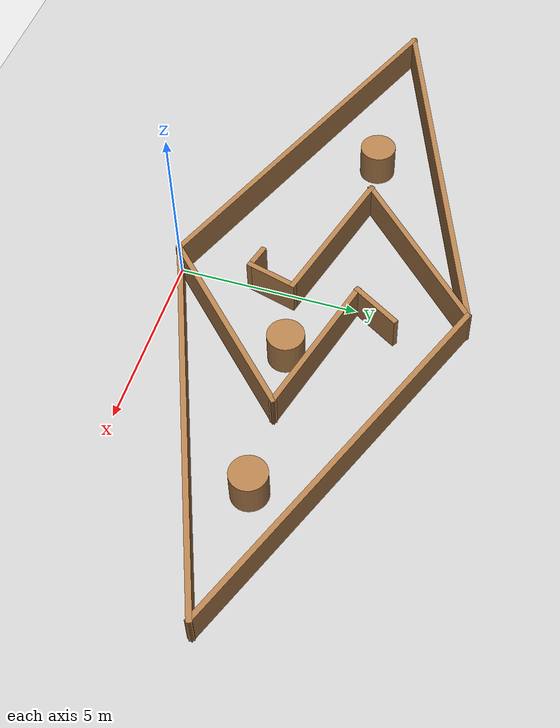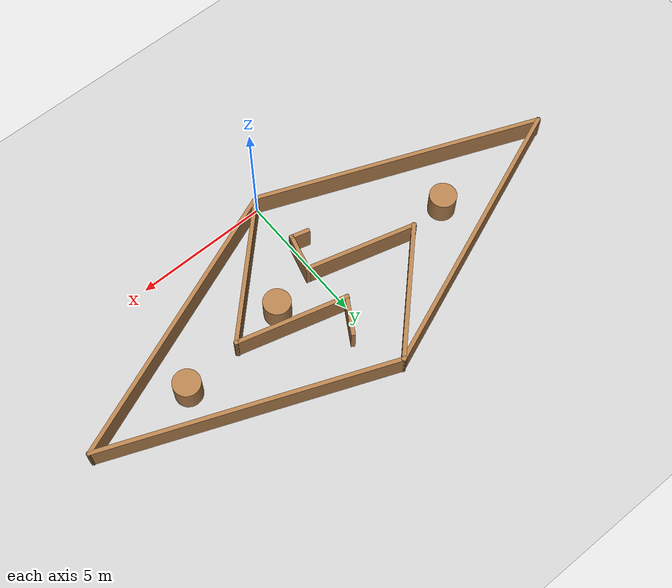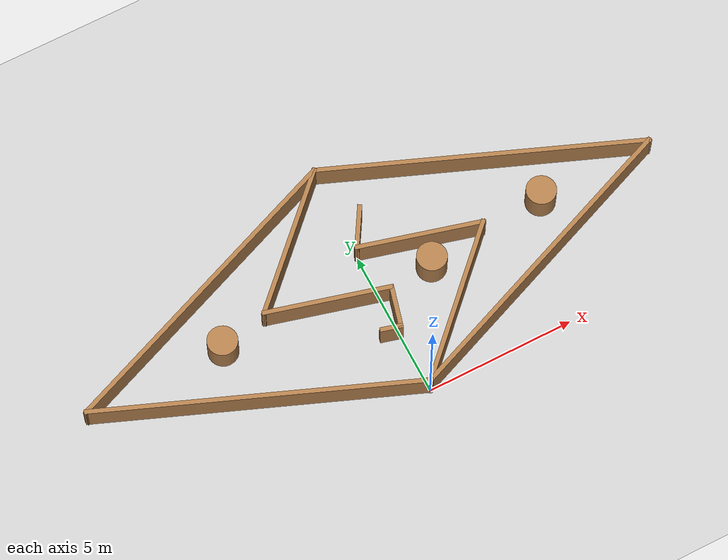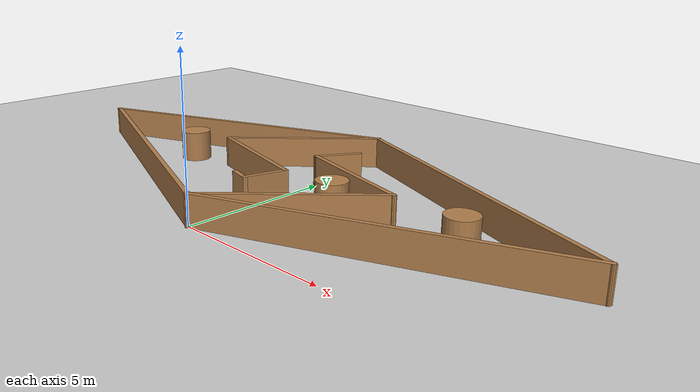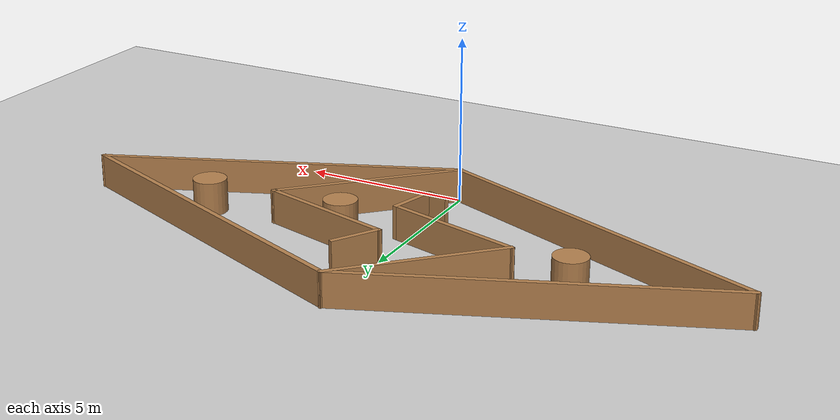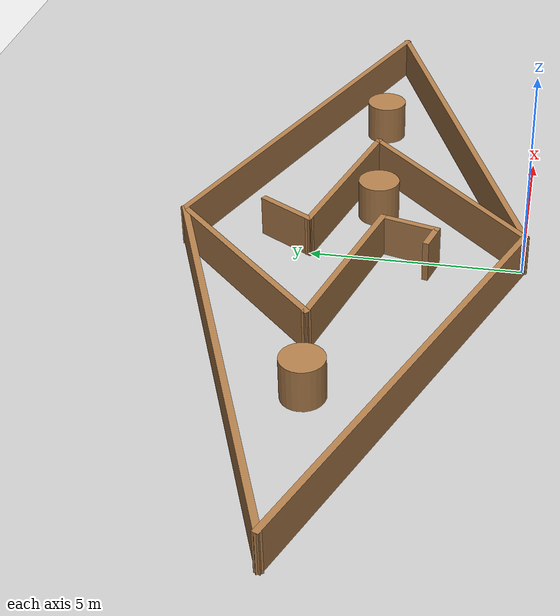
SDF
<sdf version='1.7'>
  <world name='default'>
    <light name='sun' type='directional'>
      <cast_shadows>1</cast_shadows>
      <pose>0 0 10 0 -0 0</pose>
      <diffuse>0.8 0.8 0.8 1</diffuse>
      <specular>0.2 0.2 0.2 1</specular>
      <attenuation>
        <range>1000</range>
        <constant>0.9</constant>
        <linear>0.01</linear>
        <quadratic>0.001</quadratic>
      </attenuation>
      <direction>-0.5 0.1 -0.9</direction>
      <spot>
        <inner_angle>0</inner_angle>
        <outer_angle>0</outer_angle>
        <falloff>0</falloff>
      </spot>
    </light>
    <model name='ground_plane'>
      <static>1</static>
      <link name='link'>
        <collision name='collision'>
          <geometry>
            <plane>
              <normal>0 0 1</normal>
              <size>100 100</size>
            </plane>
          </geometry>
          <surface>
            <contact>
              <collide_bitmask>65535</collide_bitmask>
              <ode/>
            </contact>
            <friction>
              <ode>
                <mu>100</mu>
                <mu2>50</mu2>
              </ode>
              <torsional>
                <ode/>
              </torsional>
            </friction>
            <bounce/>
          </surface>
          <max_contacts>10</max_contacts>
        </collision>
        <visual name='visual'>
          <cast_shadows>0</cast_shadows>
          <geometry>
            <plane>
              <normal>0 0 1</normal>
              <size>100 100</size>
            </plane>
          </geometry>
          <material>
            <script>
              <uri>file://media/materials/scripts/gazebo.material</uri>
              <name>Gazebo/Grey</name>
            </script>
          </material>
        </visual>
        <self_collide>0</self_collide>
        <enable_wind>0</enable_wind>
        <kinematic>0</kinematic>
      </link>
    </model>
    <gravity>0 0 -9.8</gravity>
    <magnetic_field>6e-06 2.3e-05 -4.2e-05</magnetic_field>
    <atmosphere type='adiabatic'/>
    <physics type='ode'>
      <max_step_size>0.001</max_step_size>
      <real_time_factor>1</real_time_factor>
      <real_time_update_rate>1000</real_time_update_rate>
    </physics>
    <scene>
      <ambient>0.4 0.4 0.4 1</ambient>
      <background>0.7 0.7 0.7 1</background>
      <shadows>1</shadows>
    </scene>
    <wind/>
    <spherical_coordinates>
      <surface_model>EARTH_WGS84</surface_model>
      <latitude_deg>0</latitude_deg>
      <longitude_deg>0</longitude_deg>
      <elevation>0</elevation>
      <heading_deg>0</heading_deg>
    </spherical_coordinates>
    <model name='aro_medium_2'>
      <pose>0 4 0 0 -0 0</pose>
      <link name='Wall_0'>
        <collision name='Wall_0_Collision'>
          <geometry>
            <box>
              <size>10.9203 0.15 1</size>
            </box>
          </geometry>
          <pose>0 0 0.5 0 -0 0</pose>
          <max_contacts>10</max_contacts>
          <surface>
            <contact>
              <ode/>
            </contact>
            <bounce/>
            <friction>
              <torsional>
                <ode/>
              </torsional>
              <ode/>
            </friction>
          </surface>
        </collision>
        <visual name='Wall_0_Visual'>
          <pose>0 0 0.5 0 -0 0</pose>
          <geometry>
            <box>
              <size>10.9203 0.15 1</size>
            </box>
          </geometry>
          <material>
            <script>
              <uri>file://media/materials/scripts/gazebo.material</uri>
              <name>Gazebo/Wood</name>
            </script>
            <ambient>1 1 1 1</ambient>
          </material>
          <meta>
            <layer>0</layer>
          </meta>
        </visual>
        <pose>-5 -2 0 0 -0 -0.380506</pose>
        <self_collide>0</self_collide>
        <enable_wind>0</enable_wind>
        <kinematic>0</kinematic>
      </link>
      <link name='Wall_1'>
        <collision name='Wall_1_Collision'>
          <geometry>
            <box>
              <size>10.9203 0.15 1</size>
            </box>
          </geometry>
          <pose>0 0 0.5 0 -0 0</pose>
          <max_contacts>10</max_contacts>
          <surface>
            <contact>
              <ode/>
            </contact>
            <bounce/>
            <friction>
              <torsional>
                <ode/>
              </torsional>
              <ode/>
            </friction>
          </surface>
        </collision>
        <visual name='Wall_1_Visual'>
          <pose>0 0 0.5 0 -0 0</pose>
          <geometry>
            <box>
              <size>10.9203 0.15 1</size>
            </box>
          </geometry>
          <material>
            <script>
              <uri>file://media/materials/scripts/gazebo.material</uri>
              <name>Gazebo/Wood</name>
            </script>
            <ambient>1 1 1 1</ambient>
          </material>
          <meta>
            <layer>0</layer>
          </meta>
        </visual>
        <pose>5 -2 0 0 -0 0.380506</pose>
        <self_collide>0</self_collide>
        <enable_wind>0</enable_wind>
        <kinematic>0</kinematic>
      </link>
      <link name='Wall_10'>
        <collision name='Wall_10_Collision'>
          <geometry>
            <box>
              <size>5.25 0.15 1</size>
            </box>
          </geometry>
          <pose>0 0 0.5 0 -0 0</pose>
          <max_contacts>10</max_contacts>
          <surface>
            <contact>
              <ode/>
            </contact>
            <bounce/>
            <friction>
              <torsional>
                <ode/>
              </torsional>
              <ode/>
            </friction>
          </surface>
        </collision>
        <visual name='Wall_10_Visual'>
          <pose>0 0 0.5 0 -0 0</pose>
          <geometry>
            <box>
              <size>5.25 0.15 1</size>
            </box>
          </geometry>
          <material>
            <script>
              <uri>file://media/materials/scripts/gazebo.material</uri>
              <name>Gazebo/Wood</name>
            </script>
            <ambient>1 1 1 1</ambient>
          </material>
          <meta>
            <layer>0</layer>
          </meta>
        </visual>
        <pose>-1.80312 2.19688 0 0 -0 -2.35619</pose>
        <self_collide>0</self_collide>
        <enable_wind>0</enable_wind>
        <kinematic>0</kinematic>
      </link>
      <link name='Wall_11'>
        <collision name='Wall_11_Collision'>
          <geometry>
            <box>
              <size>4.25 0.15 1</size>
            </box>
          </geometry>
          <pose>0 0 0.5 0 -0 0</pose>
          <max_contacts>10</max_contacts>
          <surface>
            <contact>
              <ode/>
            </contact>
            <bounce/>
            <friction>
              <torsional>
                <ode/>
              </torsional>
              <ode/>
            </friction>
          </surface>
        </collision>
        <visual name='Wall_11_Visual'>
          <pose>0 0 0.5 0 -0 0</pose>
          <geometry>
            <box>
              <size>4.25 0.15 1</size>
            </box>
          </geometry>
          <material>
            <script>
              <uri>file://media/materials/scripts/gazebo.material</uri>
              <name>Gazebo/Wood</name>
            </script>
            <ambient>1 1 1 1</ambient>
          </material>
          <meta>
            <layer>0</layer>
          </meta>
        </visual>
        <pose>-1.6261 -0.136823 0 0 -0 -0.261799</pose>
        <self_collide>0</self_collide>
        <enable_wind>0</enable_wind>
        <kinematic>0</kinematic>
      </link>
      <link name='Wall_12'>
        <collision name='Wall_12_Collision'>
          <geometry>
            <box>
              <size>1.5 0.15 1</size>
            </box>
          </geometry>
          <pose>0 0 0.5 0 -0 0</pose>
          <max_contacts>10</max_contacts>
          <surface>
            <contact>
              <ode/>
            </contact>
            <bounce/>
            <friction>
              <torsional>
                <ode/>
              </torsional>
              <ode/>
            </friction>
          </surface>
        </collision>
        <visual name='Wall_12_Visual'>
          <pose>0 0 0.5 0 -0 0</pose>
          <geometry>
            <box>
              <size>1.5 0.15 1</size>
            </box>
          </geometry>
          <material>
            <script>
              <uri>file://media/materials/scripts/gazebo.material</uri>
              <name>Gazebo/Wood</name>
            </script>
            <ambient>1 1 1 1</ambient>
          </material>
          <meta>
            <layer>0</layer>
          </meta>
        </visual>
        <pose>0.179348 -1.3194 0 0 -0 -1.8326</pose>
        <self_collide>0</self_collide>
        <enable_wind>0</enable_wind>
        <kinematic>0</kinematic>
      </link>
      <link name='Wall_14'>
        <collision name='Wall_14_Collision'>
          <geometry>
            <box>
              <size>0.75 0.15 1</size>
            </box>
          </geometry>
          <pose>0 0 0.5 0 -0 0</pose>
          <max_contacts>10</max_contacts>
          <surface>
            <contact>
              <ode/>
            </contact>
            <bounce/>
            <friction>
              <torsional>
                <ode/>
              </torsional>
              <ode/>
            </friction>
          </surface>
        </collision>
        <visual name='Wall_14_Visual'>
          <pose>0 0 0.5 0 -0 0</pose>
          <geometry>
            <box>
              <size>0.75 0.15 1</size>
            </box>
          </geometry>
          <material>
            <script>
              <uri>file://media/materials/scripts/gazebo.material</uri>
              <name>Gazebo/Wood</name>
            </script>
            <ambient>1 1 1 1</ambient>
          </material>
          <meta>
            <layer>0</layer>
          </meta>
        </visual>
        <pose>-0.285132 -1.89376 0 0 -0 2.87979</pose>
        <self_collide>0</self_collide>
        <enable_wind>0</enable_wind>
        <kinematic>0</kinematic>
      </link>
      <link name='Wall_2'>
        <collision name='Wall_2_Collision'>
          <geometry>
            <box>
              <size>10.9203 0.15 1</size>
            </box>
          </geometry>
          <pose>0 0 0.5 0 -0 0</pose>
          <max_contacts>10</max_contacts>
          <surface>
            <contact>
              <ode/>
            </contact>
            <bounce/>
            <friction>
              <torsional>
                <ode/>
              </torsional>
              <ode/>
            </friction>
          </surface>
        </collision>
        <visual name='Wall_2_Visual'>
          <pose>0 0 0.5 0 -0 0</pose>
          <geometry>
            <box>
              <size>10.9203 0.15 1</size>
            </box>
          </geometry>
          <material>
            <script>
              <uri>file://media/materials/scripts/gazebo.material</uri>
              <name>Gazebo/Wood</name>
            </script>
            <ambient>1 1 1 1</ambient>
          </material>
          <meta>
            <layer>0</layer>
          </meta>
        </visual>
        <pose>5 2 0 0 -0 2.76109</pose>
        <self_collide>0</self_collide>
        <enable_wind>0</enable_wind>
        <kinematic>0</kinematic>
      </link>
      <link name='Wall_3'>
        <collision name='Wall_3_Collision'>
          <geometry>
            <box>
              <size>10.9203 0.15 1</size>
            </box>
          </geometry>
          <pose>0 0 0.5 0 -0 0</pose>
          <max_contacts>10</max_contacts>
          <surface>
            <contact>
              <ode/>
            </contact>
            <bounce/>
            <friction>
              <torsional>
                <ode/>
              </torsional>
              <ode/>
            </friction>
          </surface>
        </collision>
        <visual name='Wall_3_Visual'>
          <pose>0 0 0.5 0 -0 0</pose>
          <geometry>
            <box>
              <size>10.9203 0.15 1</size>
            </box>
          </geometry>
          <material>
            <script>
              <uri>file://media/materials/scripts/gazebo.material</uri>
              <name>Gazebo/Wood</name>
            </script>
            <ambient>1 1 1 1</ambient>
          </material>
          <meta>
            <layer>0</layer>
          </meta>
        </visual>
        <pose>-5 2 0 0 -0 -2.76109</pose>
        <self_collide>0</self_collide>
        <enable_wind>0</enable_wind>
        <kinematic>0</kinematic>
      </link>
      <link name='Wall_5'>
        <collision name='Wall_5_Collision'>
          <geometry>
            <box>
              <size>5.75 0.15 1</size>
            </box>
          </geometry>
          <pose>0 0 0.5 0 -0 0</pose>
          <max_contacts>10</max_contacts>
          <surface>
            <contact>
              <ode/>
            </contact>
            <bounce/>
            <friction>
              <torsional>
                <ode/>
              </torsional>
              <ode/>
            </friction>
          </surface>
        </collision>
        <visual name='Wall_5_Visual'>
          <pose>0 0 0.5 0 -0 0</pose>
          <geometry>
            <box>
              <size>5.75 0.15 1</size>
            </box>
          </geometry>
          <material>
            <script>
              <uri>file://media/materials/scripts/gazebo.material</uri>
              <name>Gazebo/Wood</name>
            </script>
            <ambient>1 1 1 1</ambient>
          </material>
          <meta>
            <layer>0</layer>
          </meta>
        </visual>
        <pose>1.9799 -2.0201 0 0 -0 0.785398</pose>
        <self_collide>0</self_collide>
        <enable_wind>0</enable_wind>
        <kinematic>0</kinematic>
      </link>
      <link name='Wall_6'>
        <collision name='Wall_6_Collision'>
          <geometry>
            <box>
              <size>4.25 0.15 1</size>
            </box>
          </geometry>
          <pose>0 0 0.5 0 -0 0</pose>
          <max_contacts>10</max_contacts>
          <surface>
            <contact>
              <ode/>
            </contact>
            <bounce/>
            <friction>
              <torsional>
                <ode/>
              </torsional>
              <ode/>
            </friction>
          </surface>
        </collision>
        <visual name='Wall_6_Visual'>
          <pose>0 0 0.5 0 -0 0</pose>
          <geometry>
            <box>
              <size>4.25 0.15 1</size>
            </box>
          </geometry>
          <material>
            <script>
              <uri>file://media/materials/scripts/gazebo.material</uri>
              <name>Gazebo/Wood</name>
            </script>
            <ambient>1 1 1 1</ambient>
          </material>
          <meta>
            <layer>0</layer>
          </meta>
        </visual>
        <pose>1.97965 0.490377 0 0 -0 2.87979</pose>
        <self_collide>0</self_collide>
        <enable_wind>0</enable_wind>
        <kinematic>0</kinematic>
      </link>
      <link name='Wall_7'>
        <collision name='Wall_7_Collision'>
          <geometry>
            <box>
              <size>1.53775 0.15 1</size>
            </box>
          </geometry>
          <pose>0 0 0.5 0 -0 0</pose>
          <max_contacts>10</max_contacts>
          <surface>
            <contact>
              <ode/>
            </contact>
            <bounce/>
            <friction>
              <torsional>
                <ode/>
              </torsional>
              <ode/>
            </friction>
          </surface>
        </collision>
        <visual name='Wall_7_Visual'>
          <pose>0 0 0.5 0 -0 0</pose>
          <geometry>
            <box>
              <size>1.53775 0.15 1</size>
            </box>
          </geometry>
          <material>
            <script>
              <uri>file://media/materials/scripts/gazebo.material</uri>
              <name>Gazebo/Wood</name>
            </script>
            <ambient>1 1 1 1</ambient>
          </material>
          <meta>
            <layer>0</layer>
          </meta>
        </visual>
        <pose>0.357116 1.61558 0 0 -0 1.02934</pose>
        <self_collide>0</self_collide>
        <enable_wind>0</enable_wind>
        <kinematic>0</kinematic>
      </link>
      <static>1</static>
    </model>
    <gui fullscreen='0'>
      <camera name='user_camera'>
        <pose>1.90306 2.25123 18.6845 0 1.5298 1.61619</pose>
        <view_controller>orbit</view_controller>
        <projection_type>perspective</projection_type>
      </camera>
    </gui>
    <model name='unit_cylinder'>
      <pose>-5.19032 4.16213 0.5 0 -0 0</pose>
      <link name='link'>
        <inertial>
          <mass>1</mass>
          <inertia>
            <ixx>0.145833</ixx>
            <ixy>0</ixy>
            <ixz>0</ixz>
            <iyy>0.145833</iyy>
            <iyz>0</iyz>
            <izz>0.125</izz>
          </inertia>
          <pose>0 0 0 0 -0 0</pose>
        </inertial>
        <collision name='collision'>
          <geometry>
            <cylinder>
              <radius>0.5</radius>
              <length>1</length>
            </cylinder>
          </geometry>
          <max_contacts>10</max_contacts>
          <surface>
            <contact>
              <ode/>
            </contact>
            <bounce/>
            <friction>
              <torsional>
                <ode/>
              </torsional>
              <ode/>
            </friction>
          </surface>
        </collision>
        <visual name='visual'>
          <geometry>
            <cylinder>
              <radius>0.5</radius>
              <length>1</length>
            </cylinder>
          </geometry>
          <material>
            <script>
              <name>Gazebo/Wood</name>
              <uri>file://media/materials/scripts/gazebo.material</uri>
            </script>
          </material>
        </visual>
        <self_collide>0</self_collide>
        <enable_wind>0</enable_wind>
        <kinematic>0</kinematic>
      </link>
    </model>
    <model name='unit_cylinder_0'>
      <pose>1.96445 3.65473 0.5 0 -0 0</pose>
      <link name='link'>
        <inertial>
          <mass>1</mass>
          <inertia>
            <ixx>0.145833</ixx>
            <ixy>0</ixy>
            <ixz>0</ixz>
            <iyy>0.145833</iyy>
            <iyz>0</iyz>
            <izz>0.125</izz>
          </inertia>
          <pose>0 0 0 0 -0 0</pose>
        </inertial>
        <collision name='collision'>
          <geometry>
            <cylinder>
              <radius>0.5</radius>
              <length>1</length>
            </cylinder>
          </geometry>
          <max_contacts>10</max_contacts>
          <surface>
            <contact>
              <ode/>
            </contact>
            <bounce/>
            <friction>
              <torsional>
                <ode/>
              </torsional>
              <ode/>
            </friction>
          </surface>
        </collision>
        <visual name='visual'>
          <geometry>
            <cylinder>
              <radius>0.5</radius>
              <length>1</length>
            </cylinder>
          </geometry>
          <material>
            <script>
              <name>Gazebo/Wood</name>
              <uri>file://media/materials/scripts/gazebo.material</uri>
            </script>
          </material>
        </visual>
        <self_collide>0</self_collide>
        <enable_wind>0</enable_wind>
        <kinematic>0</kinematic>
      </link>
    </model>
    <model name='unit_cylinder_1'>
      <pose>6.11347 4.0551 0.5 0 -0 0</pose>
      <link name='link'>
        <inertial>
          <mass>1</mass>
          <inertia>
            <ixx>0.145833</ixx>
            <ixy>0</ixy>
            <ixz>0</ixz>
            <iyy>0.145833</iyy>
            <iyz>0</iyz>
            <izz>0.125</izz>
          </inertia>
          <pose>0 0 0 0 -0 0</pose>
        </inertial>
        <collision name='collision'>
          <geometry>
            <cylinder>
              <radius>0.5</radius>
              <length>1</length>
            </cylinder>
          </geometry>
          <max_contacts>10</max_contacts>
          <surface>
            <contact>
              <ode/>
            </contact>
            <bounce/>
            <friction>
              <torsional>
                <ode/>
              </torsional>
              <ode/>
            </friction>
          </surface>
        </collision>
        <visual name='visual'>
          <geometry>
            <cylinder>
              <radius>0.5</radius>
              <length>1</length>
            </cylinder>
          </geometry>
          <material>
            <script>
              <name>Gazebo/Wood</name>
              <uri>file://media/materials/scripts/gazebo.material</uri>
            </script>
          </material>
        </visual>
        <self_collide>0</self_collide>
        <enable_wind>0</enable_wind>
        <kinematic>0</kinematic>
      </link>
    </model>
  </world>
</sdf>
